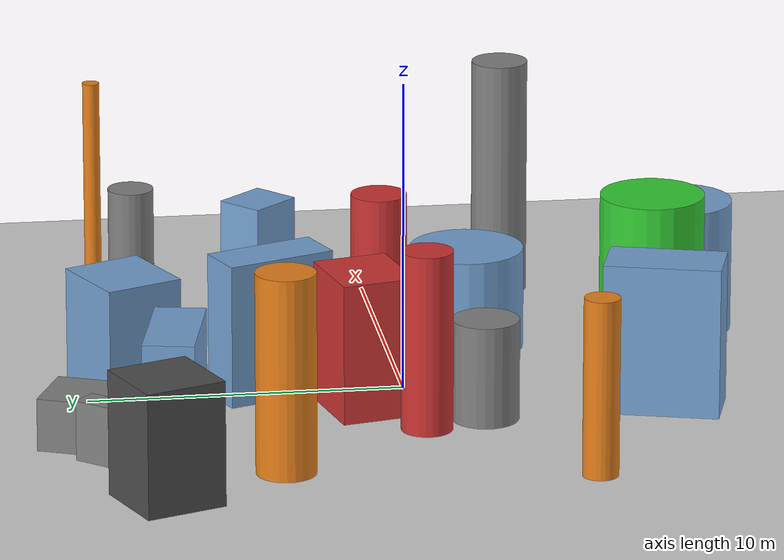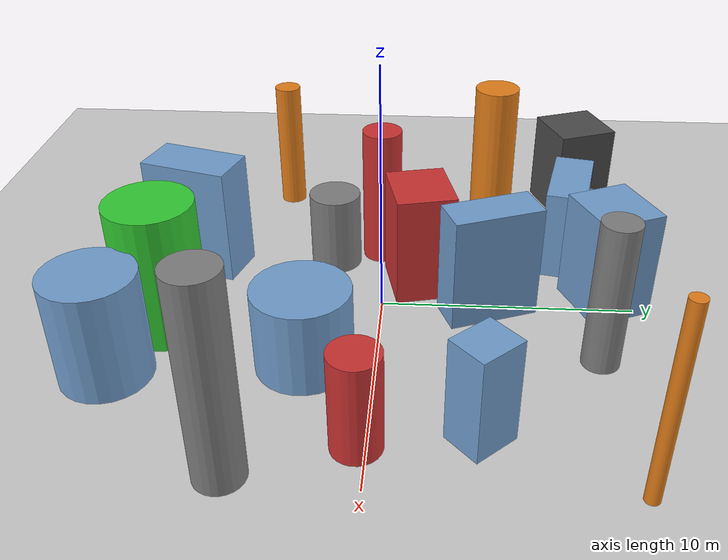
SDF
<?xml version='1.0'?>
<sdf version='1.6'>
  <world name='default'>
    <!-- Sun light -->
    <light name='sun' type='directional'>
      <cast_shadows>1</cast_shadows>
      <pose>0 0 10 0 0 0</pose>
      <diffuse>0.8 0.8 0.8 1</diffuse>
      <specular>0.2 0.2 0.2 1</specular>
      <attenuation>
        <range>1000</range>
        <constant>0.9</constant>
        <linear>0.01</linear>
        <quadratic>0.001</quadratic>
      </attenuation>
      <direction>-0.5 0.1 -0.9</direction>
    </light>

    <!-- Ground plane -->
    <model name='ground_plane'>
      <static>1</static>
      <link name='link'>
        <collision name='collision'>
          <geometry>
            <plane>
              <normal>0 0 1</normal>
              <size>100 100</size>
            </plane>
          </geometry>
          <surface>
            <contact>
              <collide_bitmask>65535</collide_bitmask>
              <ode/>
            </contact>
            <friction>
              <ode>
                <mu>100</mu>
                <mu2>50</mu2>
              </ode>
              <torsional><ode/></torsional>
            </friction>
            <bounce/>
          </surface>
          <max_contacts>10</max_contacts>
        </collision>
        <visual name='visual'>
          <cast_shadows>0</cast_shadows>
          <geometry>
            <plane>
              <normal>0 0 1</normal>
              <size>100 100</size>
            </plane>
          </geometry>
          <material>
            <script>
              <uri>file://media/materials/scripts/gazebo.material</uri>
              <n>Gazebo/Grey</n>
            </script>
          </material>
        </visual>
      </link>
    </model>

    <!-- Environment -->
    <magnetic_field>6e-06 2.3e-05 -4.2e-05</magnetic_field>
    <atmosphere type='adiabatic'/>
    <physics name='default_physics' default='0' type='ode'>
      <gravity>0 0 -9.8</gravity>
      <max_step_size>0.004</max_step_size>
      <real_time_factor>1</real_time_factor>
      <real_time_update_rate>250</real_time_update_rate>
    </physics>
    <scene>
      <ambient>0.4 0.4 0.4 1</ambient>
      <background>0.7 0.7 0.7 1</background>
      <shadows>1</shadows>
    </scene>
    <wind/>
    <spherical_coordinates>
      <surface_model>EARTH_WGS84</surface_model>
      <latitude_deg>0</latitude_deg>
      <longitude_deg>0</longitude_deg>
      <elevation>0</elevation>
      <heading_deg>0</heading_deg>
    </spherical_coordinates>

    <!-- ============ OBSTACLES (20) ============ -->
    <model name='obs_00'>
      <static>1</static>
      <link name='link'>
        <visual name='visual'>
          <geometry>
            <cylinder>
              <radius>1.8330</radius>
              <length>3.3050</length>
            </cylinder>
          </geometry>
          <material>
            <script>
              <n>Gazebo/Blue</n>
              <uri>file://media/materials/scripts/gazebo.material</uri>
            </script>
            <ambient>0.447 0.624 0.812 1</ambient>
          </material>
        </visual>
        <collision name='collision'>
          <geometry>
            <cylinder>
              <radius>1.8330</radius>
              <length>3.3050</length>
            </cylinder>
          </geometry>
          <max_contacts>10</max_contacts>
          <surface>
            <contact><ode/></contact>
            <bounce/>
            <friction>
              <ode><mu>1</mu><mu2>1</mu2></ode>
              <torsional><ode/></torsional>
            </friction>
          </surface>
        </collision>
      </link>
      <pose>3.9305 -2.5744 1.6525 0 0 3.0490</pose>
    </model>

    <model name='obs_01'>
      <static>1</static>
      <link name='link'>
        <visual name='visual'>
          <geometry>
            <box>
              <size>2.7837 2.5336 4.4202</size>
            </box>
          </geometry>
          <material>
            <script>
              <n>Gazebo/Blue</n>
              <uri>file://media/materials/scripts/gazebo.material</uri>
            </script>
            <ambient>0.447 0.624 0.812 1</ambient>
          </material>
        </visual>
        <collision name='collision'>
          <geometry>
            <box>
              <size>2.7837 2.5336 4.4202</size>
            </box>
          </geometry>
          <max_contacts>10</max_contacts>
          <surface>
            <contact><ode/></contact>
            <bounce/>
            <friction>
              <ode><mu>1</mu><mu2>1</mu2></ode>
              <torsional><ode/></torsional>
            </friction>
          </surface>
        </collision>
      </link>
      <pose>-0.7008 8.9035 2.2101 0 0 0.4140</pose>
    </model>

    <model name='obs_02'>
      <static>1</static>
      <link name='link'>
        <visual name='visual'>
          <geometry>
            <cylinder>
              <radius>0.7216</radius>
              <length>5.9360</length>
            </cylinder>
          </geometry>
          <material>
            <script>
              <n>Gazebo/Grey</n>
              <uri>file://media/materials/scripts/gazebo.material</uri>
            </script>
            <ambient>0.5 0.5 0.5 1</ambient>
          </material>
        </visual>
        <collision name='collision'>
          <geometry>
            <cylinder>
              <radius>0.7216</radius>
              <length>5.9360</length>
            </cylinder>
          </geometry>
          <max_contacts>10</max_contacts>
          <surface>
            <contact><ode/></contact>
            <bounce/>
            <friction>
              <ode><mu>1</mu><mu2>1</mu2></ode>
              <torsional><ode/></torsional>
            </friction>
          </surface>
        </collision>
      </link>
      <pose>3.2596 8.2574 2.9680 0 0 2.7099</pose>
    </model>

    <model name='obs_03'>
      <static>1</static>
      <link name='link'>
        <visual name='visual'>
          <geometry>
            <box>
              <size>2.0052 3.6815 4.8502</size>
            </box>
          </geometry>
          <material>
            <script>
              <n>Gazebo/Blue</n>
              <uri>file://media/materials/scripts/gazebo.material</uri>
            </script>
            <ambient>0.447 0.624 0.812 1</ambient>
          </material>
        </visual>
        <collision name='collision'>
          <geometry>
            <box>
              <size>2.0052 3.6815 4.8502</size>
            </box>
          </geometry>
          <max_contacts>10</max_contacts>
          <surface>
            <contact><ode/></contact>
            <bounce/>
            <friction>
              <ode><mu>1</mu><mu2>1</mu2></ode>
              <torsional><ode/></torsional>
            </friction>
          </surface>
        </collision>
      </link>
      <pose>-2.7956 -7.8422 2.4251 0 0 2.8575</pose>
    </model>

    <model name='obs_04'>
      <static>1</static>
      <link name='link'>
        <visual name='visual'>
          <geometry>
            <box>
              <size>3.7099 1.6112 3.7867</size>
            </box>
          </geometry>
          <material>
            <script>
              <n>Gazebo/Blue</n>
              <uri>file://media/materials/scripts/gazebo.material</uri>
            </script>
            <ambient>0.447 0.624 0.812 1</ambient>
          </material>
        </visual>
        <collision name='collision'>
          <geometry>
            <box>
              <size>3.7099 1.6112 3.7867</size>
            </box>
          </geometry>
          <max_contacts>10</max_contacts>
          <surface>
            <contact><ode/></contact>
            <bounce/>
            <friction>
              <ode><mu>1</mu><mu2>1</mu2></ode>
              <torsional><ode/></torsional>
            </friction>
          </surface>
        </collision>
      </link>
      <pose>-4.1501 7.6680 1.8934 0 0 2.9312</pose>
    </model>

    <model name='obs_05'>
      <static>1</static>
      <link name='link'>
        <visual name='visual'>
          <geometry>
            <box>
              <size>1.6116 3.5787 4.6354</size>
            </box>
          </geometry>
          <material>
            <script>
              <n>Gazebo/Blue</n>
              <uri>file://media/materials/scripts/gazebo.material</uri>
            </script>
            <ambient>0.447 0.624 0.812 1</ambient>
          </material>
        </visual>
        <collision name='collision'>
          <geometry>
            <box>
              <size>1.6116 3.5787 4.6354</size>
            </box>
          </geometry>
          <max_contacts>10</max_contacts>
          <surface>
            <contact><ode/></contact>
            <bounce/>
            <friction>
              <ode><mu>1</mu><mu2>1</mu2></ode>
              <torsional><ode/></torsional>
            </friction>
          </surface>
        </collision>
      </link>
      <pose>0.1708 4.1938 2.3177 0 0 0.3719</pose>
    </model>

    <model name='obs_06'>
      <static>1</static>
      <link name='link'>
        <visual name='visual'>
          <geometry>
            <cylinder>
              <radius>0.9160</radius>
              <length>3.8788</length>
            </cylinder>
          </geometry>
          <material>
            <script>
              <n>Gazebo/Red</n>
              <uri>file://media/materials/scripts/gazebo.material</uri>
            </script>
            <ambient>0.8 0.2 0.2 1</ambient>
          </material>
        </visual>
        <collision name='collision'>
          <geometry>
            <cylinder>
              <radius>0.9160</radius>
              <length>3.8788</length>
            </cylinder>
          </geometry>
          <max_contacts>10</max_contacts>
          <surface>
            <contact><ode/></contact>
            <bounce/>
            <friction>
              <ode><mu>1</mu><mu2>1</mu2></ode>
              <torsional><ode/></torsional>
            </friction>
          </surface>
        </collision>
      </link>
      <pose>8.0774 -0.3068 1.9394 0 0 2.7650</pose>
    </model>

    <model name='obs_07'>
      <static>1</static>
      <link name='link'>
        <visual name='visual'>
          <geometry>
            <cylinder>
              <radius>1.6701</radius>
              <length>5.4579</length>
            </cylinder>
          </geometry>
          <material>
            <script>
              <n>Gazebo/Green</n>
              <uri>file://media/materials/scripts/gazebo.material</uri>
            </script>
            <ambient>0.2 0.8 0.2 1</ambient>
          </material>
        </visual>
        <collision name='collision'>
          <geometry>
            <cylinder>
              <radius>1.6701</radius>
              <length>5.4579</length>
            </cylinder>
          </geometry>
          <max_contacts>10</max_contacts>
          <surface>
            <contact><ode/></contact>
            <bounce/>
            <friction>
              <ode><mu>1</mu><mu2>1</mu2></ode>
              <torsional><ode/></torsional>
            </friction>
          </surface>
        </collision>
      </link>
      <pose>1.9421 -8.2396 2.7290 0 0 2.3424</pose>
    </model>

    <model name='obs_08'>
      <static>1</static>
      <link name='link'>
        <visual name='visual'>
          <geometry>
            <box>
              <size>3.2269 0.8737 1.9237</size>
            </box>
          </geometry>
          <material>
            <script>
              <n>Gazebo/Grey</n>
              <uri>file://media/materials/scripts/gazebo.material</uri>
            </script>
            <ambient>0.5 0.5 0.5 1</ambient>
          </material>
        </visual>
        <collision name='collision'>
          <geometry>
            <box>
              <size>3.2269 0.8737 1.9237</size>
            </box>
          </geometry>
          <max_contacts>10</max_contacts>
          <surface>
            <contact><ode/></contact>
            <bounce/>
            <friction>
              <ode><mu>1</mu><mu2>1</mu2></ode>
              <torsional><ode/></torsional>
            </friction>
          </surface>
        </collision>
      </link>
      <pose>-6.0225 9.3358 0.9619 0 0 0.8602</pose>
    </model>

    <model name='obs_09'>
      <static>1</static>
      <link name='link'>
        <visual name='visual'>
          <geometry>
            <box>
              <size>2.6196 2.6433 3.9818</size>
            </box>
          </geometry>
          <material>
            <script>
              <n>Gazebo/DarkGrey</n>
              <uri>file://media/materials/scripts/gazebo.material</uri>
            </script>
            <ambient>0.3 0.3 0.3 1</ambient>
          </material>
        </visual>
        <collision name='collision'>
          <geometry>
            <box>
              <size>2.6196 2.6433 3.9818</size>
            </box>
          </geometry>
          <max_contacts>10</max_contacts>
          <surface>
            <contact><ode/></contact>
            <bounce/>
            <friction>
              <ode><mu>1</mu><mu2>1</mu2></ode>
              <torsional><ode/></torsional>
            </friction>
          </surface>
        </collision>
      </link>
      <pose>-9.2050 8.4454 1.9909 0 0 1.9382</pose>
    </model>

    <model name='obs_10'>
      <static>1</static>
      <link name='link'>
        <visual name='visual'>
          <geometry>
            <cylinder>
              <radius>0.8146</radius>
              <length>5.8170</length>
            </cylinder>
          </geometry>
          <material>
            <script>
              <n>Gazebo/Red</n>
              <uri>file://media/materials/scripts/gazebo.material</uri>
            </script>
            <ambient>0.8 0.2 0.2 1</ambient>
          </material>
        </visual>
        <collision name='collision'>
          <geometry>
            <cylinder>
              <radius>0.8146</radius>
              <length>5.8170</length>
            </cylinder>
          </geometry>
          <max_contacts>10</max_contacts>
          <surface>
            <contact><ode/></contact>
            <bounce/>
            <friction>
              <ode><mu>1</mu><mu2>1</mu2></ode>
              <torsional><ode/></torsional>
            </friction>
          </surface>
        </collision>
      </link>
      <pose>-3.9014 -0.2013 2.9085 0 0 2.1595</pose>
    </model>

    <model name='obs_11'>
      <static>1</static>
      <link name='link'>
        <visual name='visual'>
          <geometry>
            <cylinder>
              <radius>1.7154</radius>
              <length>4.2813</length>
            </cylinder>
          </geometry>
          <material>
            <script>
              <n>Gazebo/Blue</n>
              <uri>file://media/materials/scripts/gazebo.material</uri>
            </script>
            <ambient>0.447 0.624 0.812 1</ambient>
          </material>
        </visual>
        <collision name='collision'>
          <geometry>
            <cylinder>
              <radius>1.7154</radius>
              <length>4.2813</length>
            </cylinder>
          </geometry>
          <max_contacts>10</max_contacts>
          <surface>
            <contact><ode/></contact>
            <bounce/>
            <friction>
              <ode><mu>1</mu><mu2>1</mu2></ode>
              <torsional><ode/></torsional>
            </friction>
          </surface>
        </collision>
      </link>
      <pose>4.8878 -9.6326 2.1407 0 0 0.4212</pose>
    </model>

    <model name='obs_12'>
      <static>1</static>
      <link name='link'>
        <visual name='visual'>
          <geometry>
            <box>
              <size>3.4825 2.2201 1.6876</size>
            </box>
          </geometry>
          <material>
            <script>
              <n>Gazebo/Grey</n>
              <uri>file://media/materials/scripts/gazebo.material</uri>
            </script>
            <ambient>0.5 0.5 0.5 1</ambient>
          </material>
        </visual>
        <collision name='collision'>
          <geometry>
            <box>
              <size>3.4825 2.2201 1.6876</size>
            </box>
          </geometry>
          <max_contacts>10</max_contacts>
          <surface>
            <contact><ode/></contact>
            <bounce/>
            <friction>
              <ode><mu>1</mu><mu2>1</mu2></ode>
              <torsional><ode/></torsional>
            </friction>
          </surface>
        </collision>
      </link>
      <pose>-3.9535 9.9199 0.8438 0 0 1.1748</pose>
    </model>

    <model name='obs_13'>
      <static>1</static>
      <link name='link'>
        <visual name='visual'>
          <geometry>
            <cylinder>
              <radius>0.9059</radius>
              <length>7.7817</length>
            </cylinder>
          </geometry>
          <material>
            <script>
              <n>Gazebo/Grey</n>
              <uri>file://media/materials/scripts/gazebo.material</uri>
            </script>
            <ambient>0.5 0.5 0.5 1</ambient>
          </material>
        </visual>
        <collision name='collision'>
          <geometry>
            <cylinder>
              <radius>0.9059</radius>
              <length>7.7817</length>
            </cylinder>
          </geometry>
          <max_contacts>10</max_contacts>
          <surface>
            <contact><ode/></contact>
            <bounce/>
            <friction>
              <ode><mu>1</mu><mu2>1</mu2></ode>
              <torsional><ode/></torsional>
            </friction>
          </surface>
        </collision>
      </link>
      <pose>9.5718 -4.4824 3.8909 0 0 0.7109</pose>
    </model>

    <model name='obs_14'>
      <static>1</static>
      <link name='link'>
        <visual name='visual'>
          <geometry>
            <cylinder>
              <radius>0.5617</radius>
              <length>5.6994</length>
            </cylinder>
          </geometry>
          <material>
            <script>
              <n>Gazebo/Orange</n>
              <uri>file://media/materials/scripts/gazebo.material</uri>
            </script>
            <ambient>0.9 0.5 0.1 1</ambient>
          </material>
        </visual>
        <collision name='collision'>
          <geometry>
            <cylinder>
              <radius>0.5617</radius>
              <length>5.6994</length>
            </cylinder>
          </geometry>
          <max_contacts>10</max_contacts>
          <surface>
            <contact><ode/></contact>
            <bounce/>
            <friction>
              <ode><mu>1</mu><mu2>1</mu2></ode>
              <torsional><ode/></torsional>
            </friction>
          </surface>
        </collision>
      </link>
      <pose>-8.7598 -4.8464 2.8497 0 0 2.9851</pose>
    </model>

    <model name='obs_15'>
      <static>1</static>
      <link name='link'>
        <visual name='visual'>
          <geometry>
            <cylinder>
              <radius>0.2724</radius>
              <length>7.4897</length>
            </cylinder>
          </geometry>
          <material>
            <script>
              <n>Gazebo/Orange</n>
              <uri>file://media/materials/scripts/gazebo.material</uri>
            </script>
            <ambient>0.9 0.5 0.1 1</ambient>
          </material>
        </visual>
        <collision name='collision'>
          <geometry>
            <cylinder>
              <radius>0.2724</radius>
              <length>7.4897</length>
            </cylinder>
          </geometry>
          <max_contacts>10</max_contacts>
          <surface>
            <contact><ode/></contact>
            <bounce/>
            <friction>
              <ode><mu>1</mu><mu2>1</mu2></ode>
              <torsional><ode/></torsional>
            </friction>
          </surface>
        </collision>
      </link>
      <pose>9.8072 8.8827 3.7449 0 0 2.3806</pose>
    </model>

    <model name='obs_16'>
      <static>1</static>
      <link name='link'>
        <visual name='visual'>
          <geometry>
            <cylinder>
              <radius>1.0564</radius>
              <length>3.2743</length>
            </cylinder>
          </geometry>
          <material>
            <script>
              <n>Gazebo/Grey</n>
              <uri>file://media/materials/scripts/gazebo.material</uri>
            </script>
            <ambient>0.5 0.5 0.5 1</ambient>
          </material>
        </visual>
        <collision name='collision'>
          <geometry>
            <cylinder>
              <radius>1.0564</radius>
              <length>3.2743</length>
            </cylinder>
          </geometry>
          <max_contacts>10</max_contacts>
          <surface>
            <contact><ode/></contact>
            <bounce/>
            <friction>
              <ode><mu>1</mu><mu2>1</mu2></ode>
              <torsional><ode/></torsional>
            </friction>
          </surface>
        </collision>
      </link>
      <pose>-3.1643 -2.1431 1.6371 0 0 2.7242</pose>
    </model>

    <model name='obs_17'>
      <static>1</static>
      <link name='link'>
        <visual name='visual'>
          <geometry>
            <cylinder>
              <radius>0.9410</radius>
              <length>6.4335</length>
            </cylinder>
          </geometry>
          <material>
            <script>
              <n>Gazebo/Orange</n>
              <uri>file://media/materials/scripts/gazebo.material</uri>
            </script>
            <ambient>0.9 0.5 0.1 1</ambient>
          </material>
        </visual>
        <collision name='collision'>
          <geometry>
            <cylinder>
              <radius>0.9410</radius>
              <length>6.4335</length>
            </cylinder>
          </geometry>
          <max_contacts>10</max_contacts>
          <surface>
            <contact><ode/></contact>
            <bounce/>
            <friction>
              <ode><mu>1</mu><mu2>1</mu2></ode>
              <torsional><ode/></torsional>
            </friction>
          </surface>
        </collision>
      </link>
      <pose>-7.2548 4.5978 3.2168 0 0 2.7884</pose>
    </model>

    <model name='obs_18'>
      <static>1</static>
      <link name='link'>
        <visual name='visual'>
          <geometry>
            <box>
              <size>1.8313 1.5951 4.0575</size>
            </box>
          </geometry>
          <material>
            <script>
              <n>Gazebo/Blue</n>
              <uri>file://media/materials/scripts/gazebo.material</uri>
            </script>
            <ambient>0.447 0.624 0.812 1</ambient>
          </material>
        </visual>
        <collision name='collision'>
          <geometry>
            <box>
              <size>1.8313 1.5951 4.0575</size>
            </box>
          </geometry>
          <max_contacts>10</max_contacts>
          <surface>
            <contact><ode/></contact>
            <bounce/>
            <friction>
              <ode><mu>1</mu><mu2>1</mu2></ode>
              <torsional><ode/></torsional>
            </friction>
          </surface>
        </collision>
      </link>
      <pose>7.4540 3.7305 2.0288 0 0 2.3101</pose>
    </model>

    <model name='obs_19'>
      <static>1</static>
      <link name='link'>
        <visual name='visual'>
          <geometry>
            <box>
              <size>2.3766 2.7449 4.5206</size>
            </box>
          </geometry>
          <material>
            <script>
              <n>Gazebo/Red</n>
              <uri>file://media/materials/scripts/gazebo.material</uri>
            </script>
            <ambient>0.8 0.2 0.2 1</ambient>
          </material>
        </visual>
        <collision name='collision'>
          <geometry>
            <box>
              <size>2.3766 2.7449 4.5206</size>
            </box>
          </geometry>
          <max_contacts>10</max_contacts>
          <surface>
            <contact><ode/></contact>
            <bounce/>
            <friction>
              <ode><mu>1</mu><mu2>1</mu2></ode>
              <torsional><ode/></torsional>
            </friction>
          </surface>
        </collision>
      </link>
      <pose>-1.6533 1.4580 2.2603 0 0 1.7968</pose>
    </model>

    <!-- GUI camera -->
    <gui fullscreen='0'>
      <camera name='user_camera'>
        <pose>-15 0 18 0 0.85 0.15</pose>
        <view_controller>orbit</view_controller>
        <projection_type>perspective</projection_type>
      </camera>
    </gui>
  </world>
</sdf>
